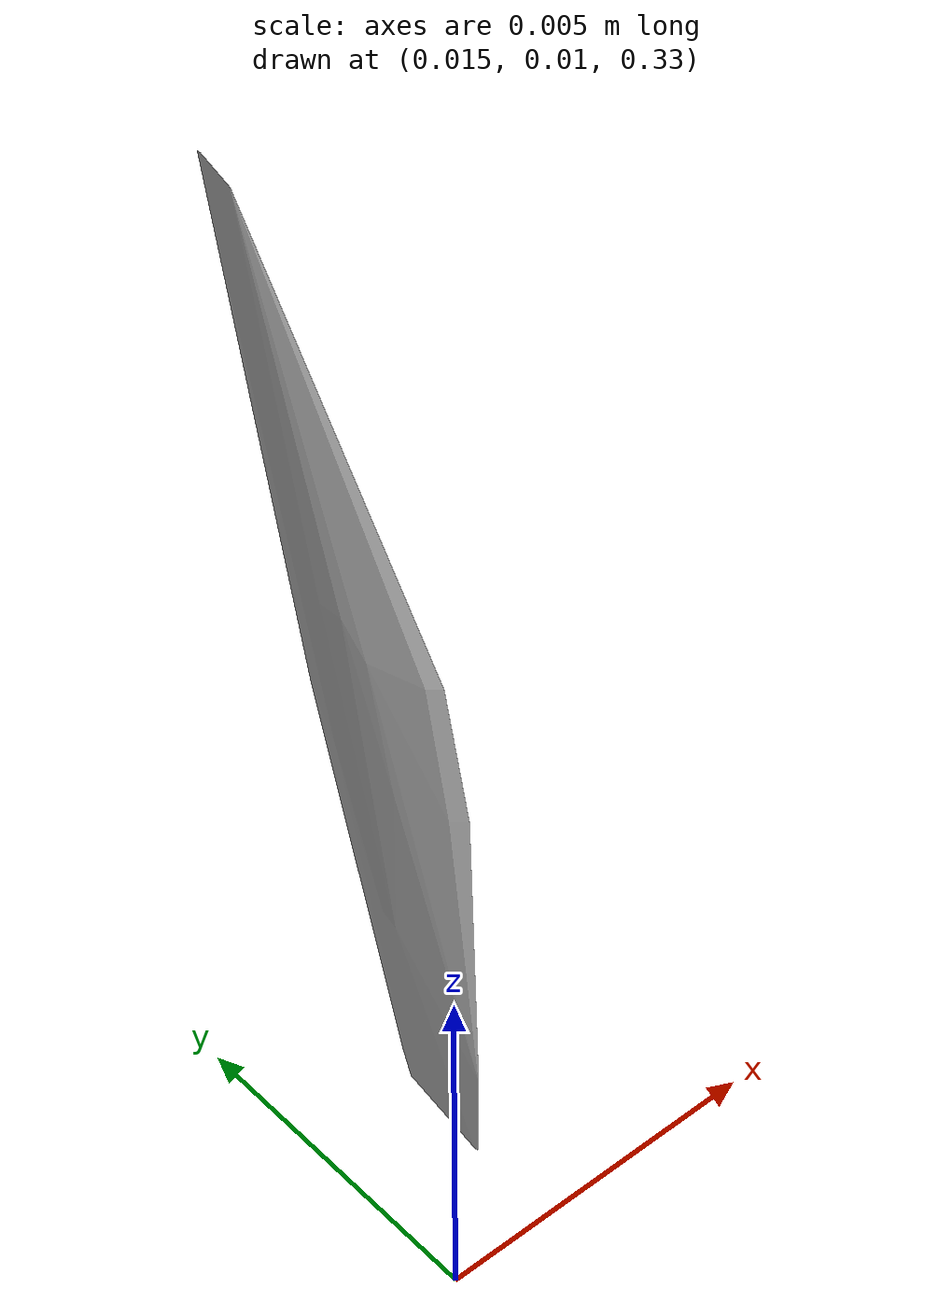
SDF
<?xml version="1.0"?>
<sdf version="1.7">
  <model name="vascular_partexport014">
    <link name="vascular_partexport014_body">
      <visual name="vascular_partexport014_visual">
        <geometry>
          <mesh>
            <uri>vascular_partexport014.obj</uri>
          </mesh>
        </geometry>
      </visual>
      <collision name="vascular_partexport014_collision">
        <geometry>
          <mesh>
            <uri>vascular_partexport014.obj</uri>
          </mesh>
        </geometry>
      </collision>
    </link>
    <frame name="vascular_partexport014_center">
      <pose relative_to="vascular_partexport014_body">0 0 0 0 0 0</pose>
    </frame>
  </model>
</sdf>
